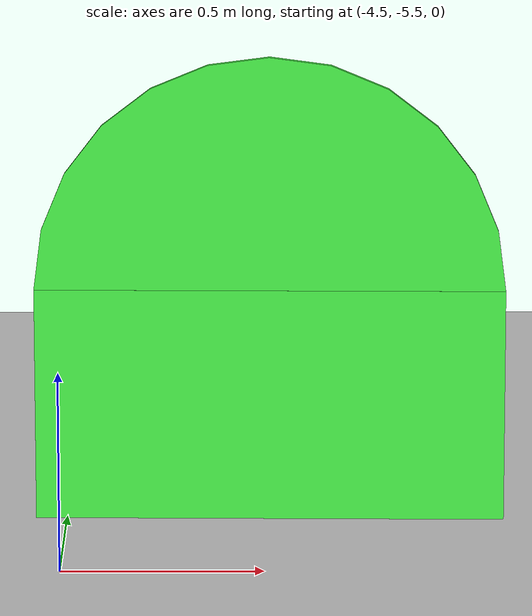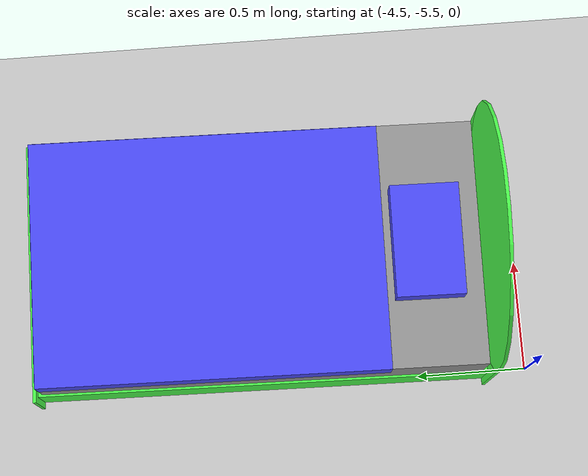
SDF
<sdf version="1.6">
 <world name="default">
  <model name="ground_plane">
   <static>1</static>
   <link name="link">
    <collision name="collision">
     <geometry><plane><normal>0 0 1</normal><size>100 100</size></plane></geometry>
     <surface><friction><ode><mu>100</mu><mu2>50</mu2></ode></friction></surface>
    </collision>
    <visual name="visual">
     <cast_shadows>0</cast_shadows>
     <geometry><plane><normal>0 0 1</normal><size>100 100</size></plane></geometry>
     <material>
      <script><uri>file://media/materials/scripts/gazebo.material</uri><name>Gazebo/Grey</name></script>
     </material>
    </visual>
   </link>
  </model>
  <model name="bedbed_clone">
   <link name="link_0">
    <pose>-1.02143 0 -0.2301 0 -0 0</pose>
    <visual name="visual">
     <geometry><box><size>0.015 1.16 0.29</size></box></geometry>
     <material>
      <lighting>1</lighting>
      <script><uri>file://media/materials/scripts/gazebo.material</uri><name>Gazebo/Grey</name></script>
      <ambient>0.3 1 0.3 1</ambient>
      <diffuse>0.7 0.7 0.7 1</diffuse>
      <specular>0.01 0.01 0.01 1</specular>
      <emissive>0 0 0 1</emissive>
      <shader type="vertex"><normal_map>__default__</normal_map></shader>
     </material>
    </visual>
    <collision name="collision">
     <geometry><box><size>0.015 1.16 0.29</size></box></geometry>
     <surface>
      <friction>
       <ode><mu>1</mu><mu2>1</mu2><fdir1>0 0 0</fdir1><slip1>0</slip1><slip2>0</slip2></ode>
       <torsional>
        <coefficient>1</coefficient>
        <patch_radius>0</patch_radius>
        <surface_radius>0</surface_radius>
        <use_patch_radius>1</use_patch_radius>
        <ode><slip>0</slip></ode>
       </torsional>
      </friction>
      <bounce><restitution_coefficient>0</restitution_coefficient><threshold>1e+06</threshold></bounce>
      <contact>
       <collide_without_contact>0</collide_without_contact>
       <collide_without_contact_bitmask>1</collide_without_contact_bitmask>
       <collide_bitmask>1</collide_bitmask>
       <ode>
        <soft_cfm>0</soft_cfm>
        <soft_erp>0.2</soft_erp>
        <kp>1e+13</kp>
        <kd>1</kd>
        <max_vel>0.01</max_vel>
        <min_depth>0</min_depth>
       </ode>
       <bullet>
        <split_impulse>1</split_impulse>
        <split_impulse_penetration_threshold>-0.01</split_impulse_penetration_threshold>
        <soft_cfm>0</soft_cfm>
        <soft_erp>0.2</soft_erp>
        <kp>1e+13</kp>
        <kd>1</kd>
       </bullet>
      </contact>
     </surface>
    </collision>
    <inertial>
     <inertia><ixx>1</ixx><ixy>0</ixy><ixz>0</ixz><iyy>1</iyy><iyz>0</iyz><izz>1</izz></inertia>
     <mass>1</mass>
    </inertial>
   </link>
   <link name="link_1">
    <pose>-0.013931 0 -0.2601 0 -0 0</pose>
    <visual name="visual">
     <geometry><box><size>2 1.1 0.23</size></box></geometry>
     <material>
      <lighting>1</lighting>
      <script><uri>file://media/materials/scripts/gazebo.material</uri><name>Gazebo/Grey</name></script>
      <ambient>0.3 1 0.3 1</ambient>
      <diffuse>0.7 0.7 0.7 1</diffuse>
      <specular>0.01 0.01 0.01 1</specular>
      <emissive>0 0 0 1</emissive>
      <shader type="vertex"><normal_map>__default__</normal_map></shader>
     </material>
    </visual>
    <collision name="collision">
     <geometry><box><size>2 1.1 0.23</size></box></geometry>
     <surface>
      <friction>
       <ode><mu>1</mu><mu2>1</mu2><fdir1>0 0 0</fdir1><slip1>0</slip1><slip2>0</slip2></ode>
       <torsional>
        <coefficient>1</coefficient>
        <patch_radius>0</patch_radius>
        <surface_radius>0</surface_radius>
        <use_patch_radius>1</use_patch_radius>
        <ode><slip>0</slip></ode>
       </torsional>
      </friction>
      <bounce><restitution_coefficient>0</restitution_coefficient><threshold>1e+06</threshold></bounce>
      <contact>
       <collide_without_contact>0</collide_without_contact>
       <collide_without_contact_bitmask>1</collide_without_contact_bitmask>
       <collide_bitmask>1</collide_bitmask>
       <ode>
        <soft_cfm>0</soft_cfm>
        <soft_erp>0.2</soft_erp>
        <kp>1e+13</kp>
        <kd>1</kd>
        <max_vel>0.01</max_vel>
        <min_depth>0</min_depth>
       </ode>
       <bullet>
        <split_impulse>1</split_impulse>
        <split_impulse_penetration_threshold>-0.01</split_impulse_penetration_threshold>
        <soft_cfm>0</soft_cfm>
        <soft_erp>0.2</soft_erp>
        <kp>1e+13</kp>
        <kd>1</kd>
       </bullet>
      </contact>
     </surface>
    </collision>
    <inertial>
     <inertia><ixx>1</ixx><ixy>0</ixy><ixz>0</ixz><iyy>1</iyy><iyz>0</iyz><izz>1</izz></inertia>
     <mass>1</mass>
    </inertial>
   </link>
   <link name="link_2">
    <pose>-0.013931 0 -0.0201 0 -0 0</pose>
    <visual name="visual">
     <geometry><box><size>1.96 1.08 0.25</size></box></geometry>
     <material>
      <lighting>0</lighting>
      <script><uri>file://media/materials/scripts/gazebo.material</uri><name>Gazebo/Grey</name></script>
      <ambient>0.3 0.3 0.3 1</ambient>
      <diffuse>0.7 0.7 0.7 1</diffuse>
      <specular>0.01 0.01 0.01 1</specular>
      <emissive>0 0 0 1</emissive>
      <shader type="vertex"><normal_map>__default__</normal_map></shader>
     </material>
    </visual>
    <collision name="collision">
     <geometry><box><size>1.96 1.08 0.25</size></box></geometry>
     <surface>
      <friction>
       <ode><mu>1</mu><mu2>1</mu2><fdir1>0 0 0</fdir1><slip1>0</slip1><slip2>0</slip2></ode>
       <torsional>
        <coefficient>1</coefficient>
        <patch_radius>0</patch_radius>
        <surface_radius>0</surface_radius>
        <use_patch_radius>1</use_patch_radius>
        <ode><slip>0</slip></ode>
       </torsional>
      </friction>
      <bounce><restitution_coefficient>0</restitution_coefficient><threshold>1e+06</threshold></bounce>
      <contact>
       <collide_without_contact>0</collide_without_contact>
       <collide_without_contact_bitmask>1</collide_without_contact_bitmask>
       <collide_bitmask>1</collide_bitmask>
       <ode>
        <soft_cfm>0</soft_cfm>
        <soft_erp>0.2</soft_erp>
        <kp>1e+13</kp>
        <kd>1</kd>
        <max_vel>0.01</max_vel>
        <min_depth>0</min_depth>
       </ode>
       <bullet>
        <split_impulse>1</split_impulse>
        <split_impulse_penetration_threshold>-0.01</split_impulse_penetration_threshold>
        <soft_cfm>0</soft_cfm>
        <soft_erp>0.2</soft_erp>
        <kp>1e+13</kp>
        <kd>1</kd>
       </bullet>
      </contact>
     </surface>
    </collision>
    <inertial>
     <inertia><ixx>1</ixx><ixy>0</ixy><ixz>0</ixz><iyy>1</iyy><iyz>0</iyz><izz>1</izz></inertia>
     <mass>1</mass>
    </inertial>
   </link>
   <link name="link_3">
    <pose>0.993569 0 -0.0851 0 -0 0</pose>
    <visual name="visual">
     <geometry><box><size>0.015 1.16 0.58</size></box></geometry>
     <material>
      <lighting>1</lighting>
      <script><uri>file://media/materials/scripts/gazebo.material</uri><name>Gazebo/Grey</name></script>
      <ambient>0.3 1 0.3 1</ambient>
      <diffuse>0.7 0.7 0.7 1</diffuse>
      <specular>0.01 0.01 0.01 1</specular>
      <emissive>0 0 0 1</emissive>
      <shader type="vertex"><normal_map>__default__</normal_map></shader>
     </material>
    </visual>
    <collision name="collision">
     <geometry><box><size>0.015 1.16 0.58</size></box></geometry>
     <surface>
      <friction>
       <ode><mu>1</mu><mu2>1</mu2><fdir1>0 0 0</fdir1><slip1>0</slip1><slip2>0</slip2></ode>
       <torsional>
        <coefficient>1</coefficient>
        <patch_radius>0</patch_radius>
        <surface_radius>0</surface_radius>
        <use_patch_radius>1</use_patch_radius>
        <ode><slip>0</slip></ode>
       </torsional>
      </friction>
      <bounce><restitution_coefficient>0</restitution_coefficient><threshold>1e+06</threshold></bounce>
      <contact>
       <collide_without_contact>0</collide_without_contact>
       <collide_without_contact_bitmask>1</collide_without_contact_bitmask>
       <collide_bitmask>1</collide_bitmask>
       <ode>
        <soft_cfm>0</soft_cfm>
        <soft_erp>0.2</soft_erp>
        <kp>1e+13</kp>
        <kd>1</kd>
        <max_vel>0.01</max_vel>
        <min_depth>0</min_depth>
       </ode>
       <bullet>
        <split_impulse>1</split_impulse>
        <split_impulse_penetration_threshold>-0.01</split_impulse_penetration_threshold>
        <soft_cfm>0</soft_cfm>
        <soft_erp>0.2</soft_erp>
        <kp>1e+13</kp>
        <kd>1</kd>
       </bullet>
      </contact>
     </surface>
    </collision>
    <inertial>
     <inertia><ixx>1</ixx><ixy>0</ixy><ixz>0</ixz><iyy>1</iyy><iyz>0</iyz><izz>1</izz></inertia>
     <mass>1</mass>
    </inertial>
   </link>
   <link name="link_4">
    <pose>0.993509 0 0.204901 0 1.5707 0</pose>
    <visual name="visual">
     <geometry><cylinder><radius>0.58</radius><length>0.015</length></cylinder></geometry>
     <material>
      <lighting>1</lighting>
      <script><uri>file://media/materials/scripts/gazebo.material</uri><name>Gazebo/Grey</name></script>
      <ambient>0.3 1 0.3 1</ambient>
      <diffuse>0.7 0.7 0.7 1</diffuse>
      <specular>0.01 0.01 0.01 1</specular>
      <emissive>0 0 0 1</emissive>
      <shader type="vertex"><normal_map>__default__</normal_map></shader>
     </material>
    </visual>
    <collision name="collision">
     <geometry><cylinder><radius>0.58</radius><length>0.015</length></cylinder></geometry>
     <surface>
      <friction>
       <ode><mu>1</mu><mu2>1</mu2><fdir1>0 0 0</fdir1><slip1>0</slip1><slip2>0</slip2></ode>
       <torsional>
        <coefficient>1</coefficient>
        <patch_radius>0</patch_radius>
        <surface_radius>0</surface_radius>
        <use_patch_radius>1</use_patch_radius>
        <ode><slip>0</slip></ode>
       </torsional>
      </friction>
      <bounce><restitution_coefficient>0</restitution_coefficient><threshold>1e+06</threshold></bounce>
      <contact>
       <collide_without_contact>0</collide_without_contact>
       <collide_without_contact_bitmask>1</collide_without_contact_bitmask>
       <collide_bitmask>1</collide_bitmask>
       <ode>
        <soft_cfm>0</soft_cfm>
        <soft_erp>0.2</soft_erp>
        <kp>1e+13</kp>
        <kd>1</kd>
        <max_vel>0.01</max_vel>
        <min_depth>0</min_depth>
       </ode>
       <bullet>
        <split_impulse>1</split_impulse>
        <split_impulse_penetration_threshold>-0.01</split_impulse_penetration_threshold>
        <soft_cfm>0</soft_cfm>
        <soft_erp>0.2</soft_erp>
        <kp>1e+13</kp>
        <kd>1</kd>
       </bullet>
      </contact>
     </surface>
    </collision>
    <inertial>
     <inertia><ixx>1</ixx><ixy>0</ixy><ixz>0</ixz><iyy>1</iyy><iyz>0</iyz><izz>1</izz></inertia>
     <mass>1</mass>
    </inertial>
   </link>
   <link name="link_5">
    <pose>-0.223931 0 0.1054 0 -0 0</pose>
    <visual name="visual">
     <geometry><box><size>1.54 1.082 0.001</size></box></geometry>
     <material>
      <lighting>1</lighting>
      <script><uri>file://media/materials/scripts/gazebo.material</uri><name>Gazebo/Grey</name></script>
      <ambient>0.3 0.3 1 1</ambient>
      <diffuse>0.7 0.7 0.7 1</diffuse>
      <specular>0.01 0.01 0.01 1</specular>
      <emissive>0 0 0 1</emissive>
      <shader type="vertex"><normal_map>__default__</normal_map></shader>
     </material>
    </visual>
    <collision name="collision">
     <geometry><box><size>1.54 1.082 0.001</size></box></geometry>
     <surface>
      <friction>
       <ode><mu>1</mu><mu2>1</mu2><fdir1>0 0 0</fdir1><slip1>0</slip1><slip2>0</slip2></ode>
       <torsional>
        <coefficient>1</coefficient>
        <patch_radius>0</patch_radius>
        <surface_radius>0</surface_radius>
        <use_patch_radius>1</use_patch_radius>
        <ode><slip>0</slip></ode>
       </torsional>
      </friction>
      <bounce><restitution_coefficient>0</restitution_coefficient><threshold>1e+06</threshold></bounce>
      <contact>
       <collide_without_contact>0</collide_without_contact>
       <collide_without_contact_bitmask>1</collide_without_contact_bitmask>
       <collide_bitmask>1</collide_bitmask>
       <ode>
        <soft_cfm>0</soft_cfm>
        <soft_erp>0.2</soft_erp>
        <kp>1e+13</kp>
        <kd>1</kd>
        <max_vel>0.01</max_vel>
        <min_depth>0</min_depth>
       </ode>
       <bullet>
        <split_impulse>1</split_impulse>
        <split_impulse_penetration_threshold>-0.01</split_impulse_penetration_threshold>
        <soft_cfm>0</soft_cfm>
        <soft_erp>0.2</soft_erp>
        <kp>1e+13</kp>
        <kd>1</kd>
       </bullet>
      </contact>
     </surface>
    </collision>
    <inertial>
     <inertia><ixx>1</ixx><ixy>0</ixy><ixz>0</ixz><iyy>1</iyy><iyz>0</iyz><izz>1</izz></inertia>
     <mass>1</mass>
    </inertial>
   </link>
   <link name="link_6">
    <pose>-0.223931 0.5405 0.0434 0 -0 0</pose>
    <visual name="visual">
     <geometry><box><size>1.54 0.001 0.125</size></box></geometry>
     <material>
      <lighting>1</lighting>
      <script><uri>file://media/materials/scripts/gazebo.material</uri><name>Gazebo/Grey</name></script>
      <ambient>0.3 0.3 1 1</ambient>
      <diffuse>0.7 0.7 0.7 1</diffuse>
      <specular>0.01 0.01 0.01 1</specular>
      <emissive>0 0 0 1</emissive>
      <shader type="vertex"><normal_map>__default__</normal_map></shader>
     </material>
    </visual>
    <collision name="collision">
     <geometry><box><size>1.54 0.001 0.125</size></box></geometry>
     <surface>
      <friction>
       <ode><mu>1</mu><mu2>1</mu2><fdir1>0 0 0</fdir1><slip1>0</slip1><slip2>0</slip2></ode>
       <torsional>
        <coefficient>1</coefficient>
        <patch_radius>0</patch_radius>
        <surface_radius>0</surface_radius>
        <use_patch_radius>1</use_patch_radius>
        <ode><slip>0</slip></ode>
       </torsional>
      </friction>
      <bounce><restitution_coefficient>0</restitution_coefficient><threshold>1e+06</threshold></bounce>
      <contact>
       <collide_without_contact>0</collide_without_contact>
       <collide_without_contact_bitmask>1</collide_without_contact_bitmask>
       <collide_bitmask>1</collide_bitmask>
       <ode>
        <soft_cfm>0</soft_cfm>
        <soft_erp>0.2</soft_erp>
        <kp>1e+13</kp>
        <kd>1</kd>
        <max_vel>0.01</max_vel>
        <min_depth>0</min_depth>
       </ode>
       <bullet>
        <split_impulse>1</split_impulse>
        <split_impulse_penetration_threshold>-0.01</split_impulse_penetration_threshold>
        <soft_cfm>0</soft_cfm>
        <soft_erp>0.2</soft_erp>
        <kp>1e+13</kp>
        <kd>1</kd>
       </bullet>
      </contact>
     </surface>
    </collision>
    <inertial>
     <inertia><ixx>1</ixx><ixy>0</ixy><ixz>0</ixz><iyy>1</iyy><iyz>0</iyz><izz>1</izz></inertia>
     <mass>1</mass>
    </inertial>
   </link>
   <link name="link_6_clone">
    <pose>-0.223931 -0.5405 0.0434 0 -0 0</pose>
    <visual name="visual">
     <geometry><box><size>1.54 0.001 0.125</size></box></geometry>
     <material>
      <lighting>1</lighting>
      <script><uri>file://media/materials/scripts/gazebo.material</uri><name>Gazebo/Grey</name></script>
      <ambient>0.3 0.3 1 1</ambient>
      <diffuse>0.7 0.7 0.7 1</diffuse>
      <specular>0.01 0.01 0.01 1</specular>
      <emissive>0 0 0 1</emissive>
      <shader type="vertex"><normal_map>__default__</normal_map></shader>
     </material>
    </visual>
    <collision name="collision">
     <geometry><box><size>1.54 0.001 0.125</size></box></geometry>
     <surface>
      <friction>
       <ode><mu>1</mu><mu2>1</mu2><fdir1>0 0 0</fdir1><slip1>0</slip1><slip2>0</slip2></ode>
       <torsional>
        <coefficient>1</coefficient>
        <patch_radius>0</patch_radius>
        <surface_radius>0</surface_radius>
        <use_patch_radius>1</use_patch_radius>
        <ode><slip>0</slip></ode>
       </torsional>
      </friction>
      <bounce><restitution_coefficient>0</restitution_coefficient><threshold>1e+06</threshold></bounce>
      <contact>
       <collide_without_contact>0</collide_without_contact>
       <collide_without_contact_bitmask>1</collide_without_contact_bitmask>
       <collide_bitmask>1</collide_bitmask>
       <ode>
        <soft_cfm>0</soft_cfm>
        <soft_erp>0.2</soft_erp>
        <kp>1e+13</kp>
        <kd>1</kd>
        <max_vel>0.01</max_vel>
        <min_depth>0</min_depth>
       </ode>
       <bullet>
        <split_impulse>1</split_impulse>
        <split_impulse_penetration_threshold>-0.01</split_impulse_penetration_threshold>
        <soft_cfm>0</soft_cfm>
        <soft_erp>0.2</soft_erp>
        <kp>1e+13</kp>
        <kd>1</kd>
       </bullet>
      </contact>
     </surface>
    </collision>
    <inertial>
     <inertia><ixx>1</ixx><ixy>0</ixy><ixz>0</ixz><iyy>1</iyy><iyz>0</iyz><izz>1</izz></inertia>
     <mass>1</mass>
    </inertial>
   </link>
   <link name="link_7">
    <pose>-0.993431 0 0.0434 0 -0 0</pose>
    <visual name="visual">
     <geometry><box><size>0.001 1.082 0.125</size></box></geometry>
     <material>
      <lighting>1</lighting>
      <script><uri>file://media/materials/scripts/gazebo.material</uri><name>Gazebo/Grey</name></script>
      <ambient>0.3 0.3 1 1</ambient>
      <diffuse>0.7 0.7 0.7 1</diffuse>
      <specular>0.01 0.01 0.01 1</specular>
      <emissive>0 0 0 1</emissive>
      <shader type="vertex"><normal_map>__default__</normal_map></shader>
     </material>
    </visual>
    <collision name="collision">
     <geometry><box><size>0.001 1.082 0.125</size></box></geometry>
     <surface>
      <friction>
       <ode><mu>1</mu><mu2>1</mu2><fdir1>0 0 0</fdir1><slip1>0</slip1><slip2>0</slip2></ode>
       <torsional>
        <coefficient>1</coefficient>
        <patch_radius>0</patch_radius>
        <surface_radius>0</surface_radius>
        <use_patch_radius>1</use_patch_radius>
        <ode><slip>0</slip></ode>
       </torsional>
      </friction>
      <bounce><restitution_coefficient>0</restitution_coefficient><threshold>1e+06</threshold></bounce>
      <contact>
       <collide_without_contact>0</collide_without_contact>
       <collide_without_contact_bitmask>1</collide_without_contact_bitmask>
       <collide_bitmask>1</collide_bitmask>
       <ode>
        <soft_cfm>0</soft_cfm>
        <soft_erp>0.2</soft_erp>
        <kp>1e+13</kp>
        <kd>1</kd>
        <max_vel>0.01</max_vel>
        <min_depth>0</min_depth>
       </ode>
       <bullet>
        <split_impulse>1</split_impulse>
        <split_impulse_penetration_threshold>-0.01</split_impulse_penetration_threshold>
        <soft_cfm>0</soft_cfm>
        <soft_erp>0.2</soft_erp>
        <kp>1e+13</kp>
        <kd>1</kd>
       </bullet>
      </contact>
     </surface>
    </collision>
    <inertial>
     <inertia><ixx>1</ixx><ixy>0</ixy><ixz>0</ixz><iyy>1</iyy><iyz>0</iyz><izz>1</izz></inertia>
     <mass>1</mass>
    </inertial>
   </link>
   <link name="link_8">
    <pose>0.727434 0 0.1549 0 -0 0</pose>
    <visual name="visual">
     <geometry><box><size>0.3 0.49 0.1</size></box></geometry>
     <material>
      <lighting>1</lighting>
      <script><uri>file://media/materials/scripts/gazebo.material</uri><name>Gazebo/Grey</name></script>
      <ambient>0.3 0.3 1 1</ambient>
      <diffuse>0.7 0.7 0.7 1</diffuse>
      <specular>0.01 0.01 0.01 1</specular>
      <emissive>0 0 0 1</emissive>
      <shader type="vertex"><normal_map>__default__</normal_map></shader>
     </material>
    </visual>
    <collision name="collision">
     <geometry><box><size>0.3 0.49 0.1</size></box></geometry>
     <surface>
      <friction>
       <ode><mu>1</mu><mu2>1</mu2><fdir1>0 0 0</fdir1><slip1>0</slip1><slip2>0</slip2></ode>
       <torsional>
        <coefficient>1</coefficient>
        <patch_radius>0</patch_radius>
        <surface_radius>0</surface_radius>
        <use_patch_radius>1</use_patch_radius>
        <ode><slip>0</slip></ode>
       </torsional>
      </friction>
      <bounce><restitution_coefficient>0</restitution_coefficient><threshold>1e+06</threshold></bounce>
      <contact>
       <collide_without_contact>0</collide_without_contact>
       <collide_without_contact_bitmask>1</collide_without_contact_bitmask>
       <collide_bitmask>1</collide_bitmask>
       <ode>
        <soft_cfm>0</soft_cfm>
        <soft_erp>0.2</soft_erp>
        <kp>1e+13</kp>
        <kd>1</kd>
        <max_vel>0.01</max_vel>
        <min_depth>0</min_depth>
       </ode>
       <bullet>
        <split_impulse>1</split_impulse>
        <split_impulse_penetration_threshold>-0.01</split_impulse_penetration_threshold>
        <soft_cfm>0</soft_cfm>
        <soft_erp>0.2</soft_erp>
        <kp>1e+13</kp>
        <kd>1</kd>
       </bullet>
      </contact>
     </surface>
    </collision>
    <inertial>
     <inertia><ixx>1</ixx><ixy>0</ixy><ixz>0</ixz><iyy>1</iyy><iyz>0</iyz><izz>1</izz></inertia>
     <mass>1</mass>
    </inertial>
   </link>
   <joint name="link_1_JOINT_0" type="fixed">
    <parent>link_1</parent>
    <child>link_0</child>
    <physics>
     <ode><limit><cfm>0</cfm><erp>0.2</erp></limit><suspension><cfm>0</cfm><erp>0.2</erp></suspension></ode>
    </physics>
   </joint>
   <joint name="link_1_JOINT_2" type="fixed">
    <parent>link_1</parent>
    <child>link_3</child>
    <physics>
     <ode><limit><cfm>0</cfm><erp>0.2</erp></limit><suspension><cfm>0</cfm><erp>0.2</erp></suspension></ode>
    </physics>
   </joint>
   <joint name="link_1_JOINT_5" type="fixed">
    <parent>link_1</parent>
    <child>link_2</child>
    <physics>
     <ode><limit><cfm>0</cfm><erp>0.2</erp></limit><suspension><cfm>0</cfm><erp>0.2</erp></suspension></ode>
    </physics>
   </joint>
   <joint name="link_2_JOINT_10" type="fixed">
    <parent>link_2</parent>
    <child>link_8</child>
    <physics>
     <ode><limit><cfm>0</cfm><erp>0.2</erp></limit><suspension><cfm>0</cfm><erp>0.2</erp></suspension></ode>
    </physics>
   </joint>
   <joint name="link_2_JOINT_6" type="fixed">
    <parent>link_2</parent>
    <child>link_5</child>
    <physics>
     <ode><limit><cfm>0</cfm><erp>0.2</erp></limit><suspension><cfm>0</cfm><erp>0.2</erp></suspension></ode>
    </physics>
   </joint>
   <joint name="link_3_JOINT_3" type="fixed">
    <parent>link_3</parent>
    <child>link_4</child>
    <physics>
     <ode><limit><cfm>0</cfm><erp>0.2</erp></limit><suspension><cfm>0</cfm><erp>0.2</erp></suspension></ode>
    </physics>
   </joint>
   <joint name="link_5_JOINT_7" type="fixed">
    <parent>link_5</parent>
    <child>link_6_clone</child>
    <physics>
     <ode><limit><cfm>0</cfm><erp>0.2</erp></limit><suspension><cfm>0</cfm><erp>0.2</erp></suspension></ode>
    </physics>
   </joint>
   <joint name="link_5_JOINT_8" type="fixed">
    <parent>link_5</parent>
    <child>link_6</child>
    <physics>
     <ode><limit><cfm>0</cfm><erp>0.2</erp></limit><suspension><cfm>0</cfm><erp>0.2</erp></suspension></ode>
    </physics>
   </joint>
   <joint name="link_5_JOINT_9" type="fixed">
    <parent>link_5</parent>
    <child>link_7</child>
    <physics>
     <ode><limit><cfm>0</cfm><erp>0.2</erp></limit><suspension><cfm>0</cfm><erp>0.2</erp></suspension></ode>
    </physics>
   </joint>
   <static>0</static>
   <pose>-3.96563 -4.3088 0.455101 -1e-06 -0 -1.59126</pose>
  </model>
 </world>
</sdf>
